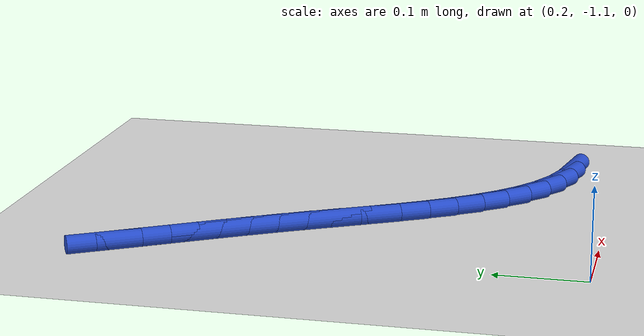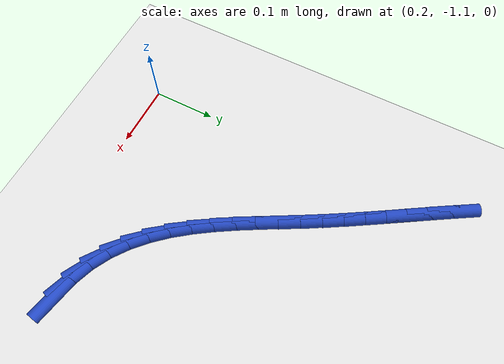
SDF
<sdf version="1.6">
 <world name="default">
  <model name="ground_plane">
   <static>1</static>
   <link name="link">
    <collision name="collision">
     <geometry><plane><normal>0 0 1</normal><size>100 100</size></plane></geometry>
     <surface><friction><ode><mu>100</mu><mu2>50</mu2></ode></friction></surface>
    </collision>
    <visual name="visual">
     <cast_shadows>0</cast_shadows>
     <geometry><plane><normal>0 0 1</normal><size>100 100</size></plane></geometry>
     <material>
      <script><uri>file://media/materials/scripts/gazebo.material</uri><name>Gazebo/WhiteGlow</name></script>
     </material>
    </visual>
   </link>
  </model>
  <model name="line">
   <link name="link_201">
    <pose>0.5659096289030423 -1.0445842275222021 0.01 0 1.57 -0.1913332085089074</pose>
    <collision name="collision">
     <geometry><cylinder><radius>0.01</radius><length>0.08</length></cylinder></geometry>
    </collision>
    <visual name="visual">
     <material>
      <script><name>Gazebo/Blue</name><uri>file://media/materials/scripts/gazebo.material</uri></script>
     </material>
     <geometry><cylinder><radius>0.01</radius><length>0.08</length></cylinder></geometry>
    </visual>
   </link>
   <link name="link_202">
    <pose>0.5331811740530412 -1.0382446370342107 0.01 0 1.57 -0.332883219205833</pose>
    <collision name="collision">
     <geometry><cylinder><radius>0.01</radius><length>0.08</length></cylinder></geometry>
    </collision>
    <visual name="visual">
     <material>
      <script><name>Gazebo/Blue</name><uri>file://media/materials/scripts/gazebo.material</uri></script>
     </material>
     <geometry><cylinder><radius>0.01</radius><length>0.08</length></cylinder></geometry>
    </visual>
   </link>
   <link name="link_203">
    <pose>0.503119503603032 -1.0278508280329663 0.01 0 1.57 -0.48370478656039206</pose>
    <collision name="collision">
     <geometry><cylinder><radius>0.01</radius><length>0.08</length></cylinder></geometry>
    </collision>
    <visual name="visual">
     <material>
      <script><name>Gazebo/Blue</name><uri>file://media/materials/scripts/gazebo.material</uri></script>
     </material>
     <geometry><cylinder><radius>0.01</radius><length>0.08</length></cylinder></geometry>
    </visual>
   </link>
   <link name="link_204">
    <pose>0.47573035665703534 -1.0134625181026113 0.01 0 1.57 -0.6218610980852733</pose>
    <collision name="collision">
     <geometry><cylinder><radius>0.01</radius><length>0.08</length></cylinder></geometry>
    </collision>
    <visual name="visual">
     <material>
      <script><name>Gazebo/Blue</name><uri>file://media/materials/scripts/gazebo.material</uri></script>
     </material>
     <geometry><cylinder><radius>0.01</radius><length>0.08</length></cylinder></geometry>
    </visual>
   </link>
   <link name="link_205">
    <pose>0.45073191650058597 -0.995545576463724 0.01 0 1.57 -0.7416831351707827</pose>
    <collision name="collision">
     <geometry><cylinder><radius>0.01</radius><length>0.08</length></cylinder></geometry>
    </collision>
    <visual name="visual">
     <material>
      <script><name>Gazebo/Blue</name><uri>file://media/materials/scripts/gazebo.material</uri></script>
     </material>
     <geometry><cylinder><radius>0.01</radius><length>0.08</length></cylinder></geometry>
    </visual>
   </link>
   <link name="link_206">
    <pose>0.42783861312034066 -0.9745711735980049 0.01 0 1.57 -0.8410589649149397</pose>
    <collision name="collision">
     <geometry><cylinder><radius>0.01</radius><length>0.08</length></cylinder></geometry>
    </collision>
    <visual name="visual">
     <material>
      <script><name>Gazebo/Blue</name><uri>file://media/materials/scripts/gazebo.material</uri></script>
     </material>
     <geometry><cylinder><radius>0.01</radius><length>0.08</length></cylinder></geometry>
    </visual>
   </link>
   <link name="link_207">
    <pose>0.4067648765029557 -0.9510104799871549 0.01 0 1.57 -0.9202813205707019</pose>
    <collision name="collision">
     <geometry><cylinder><radius>0.01</radius><length>0.08</length></cylinder></geometry>
    </collision>
    <visual name="visual">
     <material>
      <script><name>Gazebo/Blue</name><uri>file://media/materials/scripts/gazebo.material</uri></script>
     </material>
     <geometry><cylinder><radius>0.01</radius><length>0.08</length></cylinder></geometry>
    </visual>
   </link>
   <link name="link_208">
    <pose>0.38722513663508723 -0.9253346661128747 0.01 0 1.57 -0.9808162642775657</pose>
    <collision name="collision">
     <geometry><cylinder><radius>0.01</radius><length>0.08</length></cylinder></geometry>
    </collision>
    <visual name="visual">
     <material>
      <script><name>Gazebo/Blue</name><uri>file://media/materials/scripts/gazebo.material</uri></script>
     </material>
     <geometry><cylinder><radius>0.01</radius><length>0.08</length></cylinder></geometry>
    </visual>
   </link>
   <link name="link_209">
    <pose>0.36893382350339265 -0.898014902456866 0.01 0 1.57 -1.0243873653509405</pose>
    <collision name="collision">
     <geometry><cylinder><radius>0.01</radius><length>0.08</length></cylinder></geometry>
    </collision>
    <visual name="visual">
     <material>
      <script><name>Gazebo/Blue</name><uri>file://media/materials/scripts/gazebo.material</uri></script>
     </material>
     <geometry><cylinder><radius>0.01</radius><length>0.08</length></cylinder></geometry>
    </visual>
   </link>
   <link name="link_210">
    <pose>0.35160536709452833 -0.8695223595008299 0.01 0 1.57 -1.0524562951390528</pose>
    <collision name="collision">
     <geometry><cylinder><radius>0.01</radius><length>0.08</length></cylinder></geometry>
    </collision>
    <visual name="visual">
     <material>
      <script><name>Gazebo/Blue</name><uri>file://media/materials/scripts/gazebo.material</uri></script>
     </material>
     <geometry><cylinder><radius>0.01</radius><length>0.08</length></cylinder></geometry>
    </visual>
   </link>
   <link name="link_211">
    <pose>0.33495419739515037 -0.8403282077264663 0.01 0 1.57 -1.0659741294823326</pose>
    <collision name="collision">
     <geometry><cylinder><radius>0.01</radius><length>0.08</length></cylinder></geometry>
    </collision>
    <visual name="visual">
     <material>
      <script><name>Gazebo/Blue</name><uri>file://media/materials/scripts/gazebo.material</uri></script>
     </material>
     <geometry><cylinder><radius>0.01</radius><length>0.08</length></cylinder></geometry>
    </visual>
   </link>
   <link name="link_212">
    <pose>0.3186947443919157 -0.8109036176154774 0.01 0 1.57 -1.06526887398013</pose>
    <collision name="collision">
     <geometry><cylinder><radius>0.01</radius><length>0.08</length></cylinder></geometry>
    </collision>
    <visual name="visual">
     <material>
      <script><name>Gazebo/Blue</name><uri>file://media/materials/scripts/gazebo.material</uri></script>
     </material>
     <geometry><cylinder><radius>0.01</radius><length>0.08</length></cylinder></geometry>
    </visual>
   </link>
   <link name="link_213">
    <pose>0.30254143807148054 -0.7817197596495634 0.01 0 1.57 -1.0519160780065981</pose>
    <collision name="collision">
     <geometry><cylinder><radius>0.01</radius><length>0.08</length></cylinder></geometry>
    </collision>
    <visual name="visual">
     <material>
      <script><name>Gazebo/Blue</name><uri>file://media/materials/scripts/gazebo.material</uri></script>
     </material>
     <geometry><cylinder><radius>0.01</radius><length>0.08</length></cylinder></geometry>
    </visual>
   </link>
   <link name="link_214">
    <pose>0.2862458505836903 -0.7531848728403565 0.01 0 1.57 -1.0372855214267085</pose>
    <collision name="collision">
     <geometry><cylinder><radius>0.01</radius><length>0.08</length></cylinder></geometry>
    </collision>
    <visual name="visual">
     <material>
      <script><name>Gazebo/Blue</name><uri>file://media/materials/scripts/gazebo.material</uri></script>
     </material>
     <geometry><cylinder><radius>0.01</radius><length>0.08</length></cylinder></geometry>
    </visual>
   </link>
   <link name="link_215">
    <pose>0.2697878705885423 -0.7253203502973808 0.01 0 1.57 -1.0260281821158865</pose>
    <collision name="collision">
     <geometry><cylinder><radius>0.01</radius><length>0.08</length></cylinder></geometry>
    </collision>
    <visual name="visual">
     <material>
      <script><name>Gazebo/Blue</name><uri>file://media/materials/scripts/gazebo.material</uri></script>
     </material>
     <geometry><cylinder><radius>0.01</radius><length>0.08</length></cylinder></geometry>
    </visual>
   </link>
   <link name="link_216">
    <pose>0.25323408116171886 -0.6980006952735318 0.01 0 1.57 -1.018369105849575</pose>
    <collision name="collision">
     <geometry><cylinder><radius>0.01</radius><length>0.08</length></cylinder></geometry>
    </collision>
    <visual name="visual">
     <material>
      <script><name>Gazebo/Blue</name><uri>file://media/materials/scripts/gazebo.material</uri></script>
     </material>
     <geometry><cylinder><radius>0.01</radius><length>0.08</length></cylinder></geometry>
    </visual>
   </link>
   <link name="link_217">
    <pose>0.23665123206561486 -0.6711001285976581 0.01 0 1.57 -1.0144806757532465</pose>
    <collision name="collision">
     <geometry><cylinder><radius>0.01</radius><length>0.08</length></cylinder></geometry>
    </collision>
    <visual name="visual">
     <material>
      <script><name>Gazebo/Blue</name><uri>file://media/materials/scripts/gazebo.material</uri></script>
     </material>
     <geometry><cylinder><radius>0.01</radius><length>0.08</length></cylinder></geometry>
    </visual>
   </link>
   <link name="link_218">
    <pose>0.2201060730626257 -0.6444928710986091 0.01 0 1.57 -1.0144879002799125</pose>
    <collision name="collision">
     <geometry><cylinder><radius>0.01</radius><length>0.08</length></cylinder></geometry>
    </collision>
    <visual name="visual">
     <material>
      <script><name>Gazebo/Blue</name><uri>file://media/materials/scripts/gazebo.material</uri></script>
     </material>
     <geometry><cylinder><radius>0.01</radius><length>0.08</length></cylinder></geometry>
    </visual>
   </link>
   <link name="link_219">
    <pose>0.2036653539151469 -0.6180531436052343 0.01 0 1.57 -1.018465133989593</pose>
    <collision name="collision">
     <geometry><cylinder><radius>0.01</radius><length>0.08</length></cylinder></geometry>
    </collision>
    <visual name="visual">
     <material>
      <script><name>Gazebo/Blue</name><uri>file://media/materials/scripts/gazebo.material</uri></script>
     </material>
     <geometry><cylinder><radius>0.01</radius><length>0.08</length></cylinder></geometry>
    </visual>
   </link>
   <link name="link_220">
    <pose>0.18739582438557364 -0.5916551669463831 0.01 0 1.57 -1.0264327093245038</pose>
    <collision name="collision">
     <geometry><cylinder><radius>0.01</radius><length>0.08</length></cylinder></geometry>
    </collision>
    <visual name="visual">
     <material>
      <script><name>Gazebo/Blue</name><uri>file://media/materials/scripts/gazebo.material</uri></script>
     </material>
     <geometry><cylinder><radius>0.01</radius><length>0.08</length></cylinder></geometry>
    </visual>
   </link>
  </model>
 </world>
</sdf>
